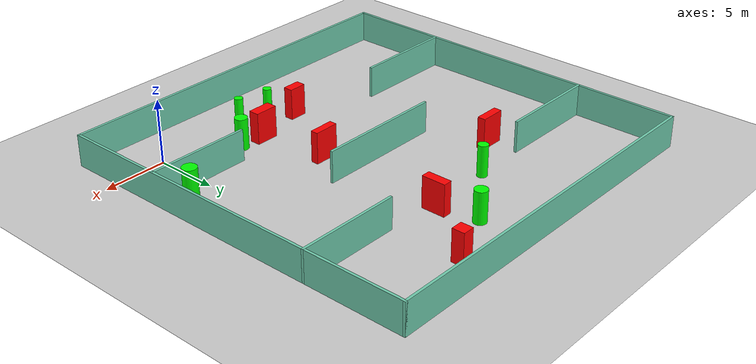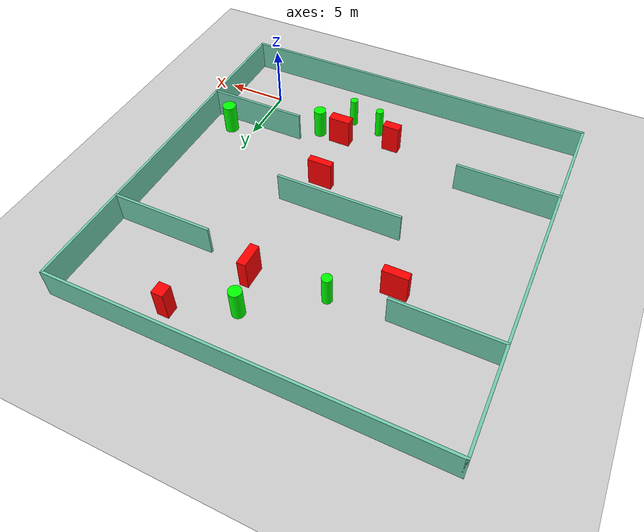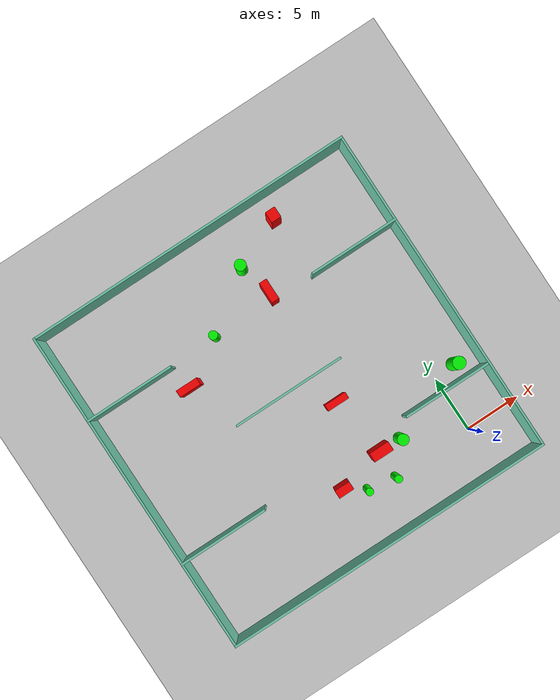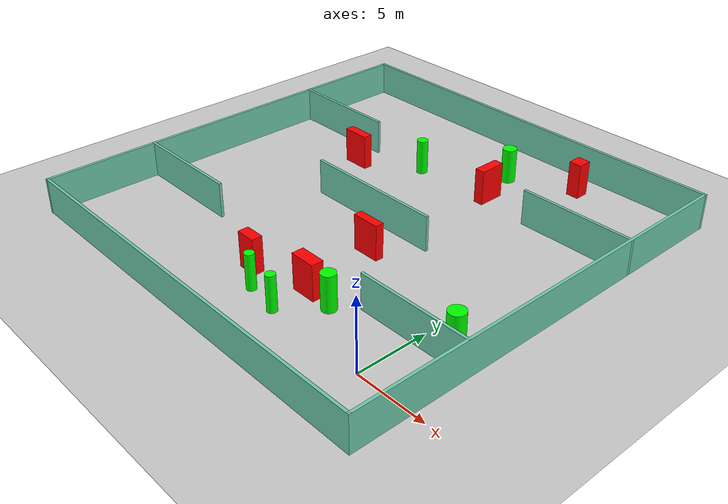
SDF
<sdf version="1.7">
 <world name="default">
  <light name="sun" type="directional">
   <pose>0 0 10 0 -0 0</pose>
   <diffuse>0.8 0.8 0.8 1</diffuse>
   <specular>0.2 0.2 0.2 1</specular>
   <attenuation>
    <range>1000</range>
    <constant>0.9</constant>
    <linear>0.01</linear>
    <quadratic>0.001</quadratic>
   </attenuation>
   <direction>-0.5 0.1 -0.9</direction>
   <spot><inner_angle>0</inner_angle><outer_angle>0</outer_angle><falloff>0</falloff></spot>
  </light>
  <model name="ground_plane">
   <static>1</static>
   <link name="link">
    <collision name="collision">
     <geometry><plane><normal>0 0 1</normal><size>100 100</size></plane></geometry>
     <surface>
      <contact><collide_bitmask>65535</collide_bitmask></contact>
      <friction><ode><mu>100</mu><mu2>50</mu2></ode></friction>
     </surface>
    </collision>
    <visual name="visual">
     <cast_shadows>0</cast_shadows>
     <geometry><plane><normal>0 0 1</normal><size>100 100</size></plane></geometry>
     <material>
      <script><uri>file://media/materials/scripts/gazebo.material</uri><name>Gazebo/Grey</name></script>
     </material>
    </visual>
   </link>
  </model>
  <gravity>0 0 -9.8</gravity>
  <magnetic_field>6e-06 2.3e-05 -4.2e-05</magnetic_field>
  <atmosphere type="adiabatic"/>
  <physics type="ode">
   <max_step_size>0.001</max_step_size>
   <real_time_factor>1</real_time_factor>
   <real_time_update_rate>1000</real_time_update_rate>
  </physics>
  <scene><ambient>0.4 0.4 0.4 1</ambient><background>0.7 0.7 0.7 1</background><shadows>1</shadows></scene>
  <spherical_coordinates>
   <surface_model>EARTH_WGS84</surface_model>
   <latitude_deg>0</latitude_deg>
   <longitude_deg>0</longitude_deg>
   <elevation>0</elevation>
   <heading_deg>0</heading_deg>
  </spherical_coordinates>
  <model name="my_base_walls">
   <link name="Wall_10">
    <collision name="Wall_10_Collision">
     <geometry><box><size>8.2 0.2 2.5</size></box></geometry>
     <pose>0 0 1.25 0 -0 0</pose>
    </collision>
    <visual name="Wall_10_Visual">
     <pose>0 0 1.25 0 -0 0</pose>
     <geometry><box><size>8.2 0.2 2.5</size></box></geometry>
     <material>
      <script><uri>file://media/materials/scripts/gazebo.material</uri><name>Gazebo/Grey</name></script>
      <ambient>0.435294 0.796078 0.67451 1</ambient>
     </material>
     <meta><layer>0</layer></meta>
    </visual>
    <pose>-11 -7 0 0 -0 0</pose>
   </link>
   <link name="Wall_12">
    <collision name="Wall_12_Collision">
     <geometry><box><size>8.2 0.2 2.5</size></box></geometry>
     <pose>0 0 1.25 0 -0 0</pose>
    </collision>
    <visual name="Wall_12_Visual">
     <pose>0 0 1.25 0 -0 0</pose>
     <geometry><box><size>8.2 0.2 2.5</size></box></geometry>
     <material>
      <script><uri>file://media/materials/scripts/gazebo.material</uri><name>Gazebo/Grey</name></script>
      <ambient>0.435294 0.796078 0.67451 1</ambient>
     </material>
     <meta><layer>0</layer></meta>
    </visual>
    <pose>-11 7 0 0 -0 0</pose>
   </link>
   <link name="Wall_14">
    <collision name="Wall_14_Collision">
     <geometry><box><size>8.2 0.2 2.5</size></box></geometry>
     <pose>0 0 1.25 0 -0 0</pose>
    </collision>
    <visual name="Wall_14_Visual">
     <pose>0 0 1.25 0 -0 0</pose>
     <geometry><box><size>8.2 0.2 2.5</size></box></geometry>
     <material>
      <script><uri>file://media/materials/scripts/gazebo.material</uri><name>Gazebo/Grey</name></script>
      <ambient>0.435294 0.796078 0.67451 1</ambient>
     </material>
     <meta><layer>0</layer></meta>
    </visual>
    <pose>11 7 0 0 -0 3.14159</pose>
   </link>
   <link name="Wall_16">
    <collision name="Wall_16_Collision">
     <geometry><box><size>10.2 0.2 2.5</size></box></geometry>
     <pose>0 0 1.25 0 -0 0</pose>
    </collision>
    <visual name="Wall_16_Visual">
     <pose>0 0 1.25 0 -0 0</pose>
     <geometry><box><size>10.2 0.2 2.5</size></box></geometry>
     <material>
      <script><uri>file://media/materials/scripts/gazebo.material</uri><name>Gazebo/Grey</name></script>
      <ambient>0.435294 0.796078 0.67451 1</ambient>
     </material>
     <meta><layer>0</layer></meta>
    </visual>
    <pose>0 0 0 0 -0 3.14159</pose>
   </link>
   <link name="Wall_2">
    <collision name="Wall_2_Collision">
     <geometry><box><size>30.2 0.2 2.5</size></box></geometry>
     <pose>0 0 1.25 0 -0 0</pose>
    </collision>
    <visual name="Wall_2_Visual">
     <pose>0 0 1.25 0 -0 0</pose>
     <geometry><box><size>30.2 0.2 2.5</size></box></geometry>
     <material>
      <script><uri>file://media/materials/scripts/gazebo.material</uri><name>Gazebo/Grey</name></script>
      <ambient>0.435294 0.796078 0.67451 1</ambient>
     </material>
     <meta><layer>0</layer></meta>
    </visual>
    <pose>0 -15 0 0 -0 3.14159</pose>
   </link>
   <link name="Wall_3">
    <collision name="Wall_3_Collision">
     <geometry><box><size>30.2 0.2 2.5</size></box></geometry>
     <pose>0 0 1.25 0 -0 0</pose>
    </collision>
    <visual name="Wall_3_Visual">
     <pose>0 0 1.25 0 -0 0</pose>
     <geometry><box><size>30.2 0.2 2.5</size></box></geometry>
     <material>
      <script><uri>file://media/materials/scripts/gazebo.material</uri><name>Gazebo/Grey</name></script>
      <ambient>0.435294 0.796078 0.67451 1</ambient>
     </material>
     <meta><layer>0</layer></meta>
    </visual>
    <pose>-15 0 0 0 -0 1.5708</pose>
   </link>
   <link name="Wall_4">
    <collision name="Wall_4_Collision">
     <geometry><box><size>30.2 0.2 2.5</size></box></geometry>
     <pose>0 0 1.25 0 -0 0</pose>
    </collision>
    <visual name="Wall_4_Visual">
     <pose>0 0 1.25 0 -0 0</pose>
     <geometry><box><size>30.2 0.2 2.5</size></box></geometry>
     <material>
      <script><uri>file://media/materials/scripts/gazebo.material</uri><name>Gazebo/Grey</name></script>
      <ambient>0.435294 0.796078 0.67451 1</ambient>
     </material>
     <meta><layer>0</layer></meta>
    </visual>
    <pose>0 15 0 0 -0 0</pose>
   </link>
   <link name="Wall_6">
    <collision name="Wall_6_Collision">
     <geometry><box><size>30.2 0.2 2.5</size></box></geometry>
     <pose>0 0 1.25 0 -0 0</pose>
    </collision>
    <visual name="Wall_6_Visual">
     <pose>0 0 1.25 0 -0 0</pose>
     <geometry><box><size>30.2 0.2 2.5</size></box></geometry>
     <material>
      <script><uri>file://media/materials/scripts/gazebo.material</uri><name>Gazebo/Grey</name></script>
      <ambient>0.435294 0.796078 0.67451 1</ambient>
     </material>
     <meta><layer>0</layer></meta>
    </visual>
    <pose>15 0 0 0 -0 1.5708</pose>
   </link>
   <link name="Wall_8">
    <collision name="Wall_8_Collision">
     <geometry><box><size>8.2 0.2 2.5</size></box></geometry>
     <pose>0 0 1.25 0 -0 0</pose>
    </collision>
    <visual name="Wall_8_Visual">
     <pose>0 0 1.25 0 -0 0</pose>
     <geometry><box><size>8.2 0.2 2.5</size></box></geometry>
     <material>
      <script><uri>file://media/materials/scripts/gazebo.material</uri><name>Gazebo/Grey</name></script>
      <ambient>0.435294 0.796078 0.67451 1</ambient>
     </material>
     <meta><layer>0</layer></meta>
    </visual>
    <pose>11 -7 0 0 -0 3.14159</pose>
   </link>
   <static>1</static>
   <pose>-11 11 0 0 -0 0</pose>
  </model>
  <model name="cylinder1">
   <static>1</static>
   <link name="link">
    <inertial>
     <mass>1</mass>
     <inertia><ixx>0.5</ixx><ixy>0</ixy><ixz>0</ixz><iyy>0.5</iyy><iyz>0</iyz><izz>1</izz></inertia>
    </inertial>
    <collision name="collision">
     <geometry><cylinder><radius>0.5697415680932616</radius><length>2.5</length></cylinder></geometry>
    </collision>
    <visual name="visual">
     <geometry><cylinder><radius>0.5697415680932616</radius><length>2.5</length></cylinder></geometry>
     <material>
      <ambient>0 1 0 1</ambient>
      <diffuse>0 1 0 1</diffuse>
      <specular>0.1 0.1 0.1 1</specular>
      <emissive>0 0 0 0</emissive>
     </material>
    </visual>
   </link>
   <pose>1.9342070756735232 5.329583591210259 1.25 0 0 0</pose>
  </model>
  <model name="cylinder2">
   <static>1</static>
   <link name="link">
    <inertial>
     <mass>1</mass>
     <inertia><ixx>0.5</ixx><ixy>0</ixy><ixz>0</ixz><iyy>0.5</iyy><iyz>0</iyz><izz>1</izz></inertia>
    </inertial>
    <collision name="collision">
     <geometry><cylinder><radius>0.333401308221852</radius><length>2.5</length></cylinder></geometry>
    </collision>
    <visual name="visual">
     <geometry><cylinder><radius>0.333401308221852</radius><length>2.5</length></cylinder></geometry>
     <material>
      <ambient>0 1 0 1</ambient>
      <diffuse>0 1 0 1</diffuse>
      <specular>0.1 0.1 0.1 1</specular>
      <emissive>0 0 0 0</emissive>
     </material>
    </visual>
   </link>
   <pose>-7.394859848092429 0.11835072772446642 1.25 0 0 0</pose>
  </model>
  <model name="cylinder3">
   <static>1</static>
   <link name="link">
    <inertial>
     <mass>1</mass>
     <inertia><ixx>0.5</ixx><ixy>0</ixy><ixz>0</ixz><iyy>0.5</iyy><iyz>0</iyz><izz>1</izz></inertia>
    </inertial>
    <collision name="collision">
     <geometry><cylinder><radius>0.49663461713797274</radius><length>2.5</length></cylinder></geometry>
    </collision>
    <visual name="visual">
     <geometry><cylinder><radius>0.49663461713797274</radius><length>2.5</length></cylinder></geometry>
     <material>
      <ambient>0 1 0 1</ambient>
      <diffuse>0 1 0 1</diffuse>
      <specular>0.1 0.1 0.1 1</specular>
      <emissive>0 0 0 0</emissive>
     </material>
    </visual>
   </link>
   <pose>-5.330746722777626 2.596535190566134 1.25 0 0 0</pose>
  </model>
  <model name="cylinder4">
   <static>1</static>
   <link name="link">
    <inertial>
     <mass>1</mass>
     <inertia><ixx>0.5</ixx><ixy>0</ixy><ixz>0</ixz><iyy>0.5</iyy><iyz>0</iyz><izz>1</izz></inertia>
    </inertial>
    <collision name="collision">
     <geometry><cylinder><radius>0.5023186681708851</radius><length>2.5</length></cylinder></geometry>
    </collision>
    <visual name="visual">
     <geometry><cylinder><radius>0.5023186681708851</radius><length>2.5</length></cylinder></geometry>
     <material>
      <ambient>0 1 0 1</ambient>
      <diffuse>0 1 0 1</diffuse>
      <specular>0.1 0.1 0.1 1</specular>
      <emissive>0 0 0 0</emissive>
     </material>
    </visual>
   </link>
   <pose>-8.619462832568628 21.815094527442547 1.25 0 0 0</pose>
  </model>
  <model name="cylinder5">
   <static>1</static>
   <link name="link">
    <inertial>
     <mass>1</mass>
     <inertia><ixx>0.5</ixx><ixy>0</ixy><ixz>0</ixz><iyy>0.5</iyy><iyz>0</iyz><izz>1</izz></inertia>
    </inertial>
    <collision name="collision">
     <geometry><cylinder><radius>0.3941512006673357</radius><length>2.5</length></cylinder></geometry>
    </collision>
    <visual name="visual">
     <geometry><cylinder><radius>0.3941512006673357</radius><length>2.5</length></cylinder></geometry>
     <material>
      <ambient>0 1 0 1</ambient>
      <diffuse>0 1 0 1</diffuse>
      <specular>0.1 0.1 0.1 1</specular>
      <emissive>0 0 0 0</emissive>
     </material>
    </visual>
   </link>
   <pose>-13.611540777574035 18.243194888988604 1.25 0 0 0</pose>
  </model>
  <model name="cylinder6">
   <static>1</static>
   <link name="link">
    <inertial>
     <mass>1</mass>
     <inertia><ixx>0.5</ixx><ixy>0</ixy><ixz>0</ixz><iyy>0.5</iyy><iyz>0</iyz><izz>1</izz></inertia>
    </inertial>
    <collision name="collision">
     <geometry><cylinder><radius>0.32965306105464814</radius><length>2.5</length></cylinder></geometry>
    </collision>
    <visual name="visual">
     <geometry><cylinder><radius>0.32965306105464814</radius><length>2.5</length></cylinder></geometry>
     <material>
      <ambient>0 1 0 1</ambient>
      <diffuse>0 1 0 1</diffuse>
      <specular>0.1 0.1 0.1 1</specular>
      <emissive>0 0 0 0</emissive>
     </material>
    </visual>
   </link>
   <pose>-9.946219867723046 0.5346379207785241 1.25 0 0 0</pose>
  </model>
  <model name="box1">
   <static>1</static>
   <link name="link">
    <inertial>
     <mass>1</mass>
     <inertia><ixx>0.083</ixx><ixy>0</ixy><ixz>0</ixz><iyy>0.083</iyy><iyz>0</iyz><izz>0.083</izz></inertia>
    </inertial>
    <collision name="collision">
     <geometry><box><size>0.9195393727685914 0.9787734424285436 2.5</size></box></geometry>
    </collision>
    <visual name="visual">
     <geometry><box><size>0.9195393727685914 0.9787734424285436 2.5</size></box></geometry>
     <material>
      <ambient>1 0 0 1</ambient>
      <diffuse>1 0 0 1</diffuse>
      <specular>0.1 0.1 0.1 1</specular>
      <emissive>0 0 0 0</emissive>
     </material>
    </visual>
    <sensor name="my_contact" type="contact">
     <contact><collision>box_collision</collision><topic>__default_topic__</topic></contact>
    </sensor>
   </link>
   <pose>-4.122501243535202 23.770580675337513 1.25 0 0 0</pose>
  </model>
  <model name="box2">
   <static>1</static>
   <link name="link">
    <inertial>
     <mass>1</mass>
     <inertia><ixx>0.083</ixx><ixy>0</ixy><ixz>0</ixz><iyy>0.083</iyy><iyz>0</iyz><izz>0.083</izz></inertia>
    </inertial>
    <collision name="collision">
     <geometry><box><size>1.4010800479337786 0.7394016680378944 2.5</size></box></geometry>
    </collision>
    <visual name="visual">
     <geometry><box><size>1.4010800479337786 0.7394016680378944 2.5</size></box></geometry>
     <material>
      <ambient>1 0 0 1</ambient>
      <diffuse>1 0 0 1</diffuse>
      <specular>0.1 0.1 0.1 1</specular>
      <emissive>0 0 0 0</emissive>
     </material>
    </visual>
    <sensor name="my_contact" type="contact">
     <contact><collision>box_collision</collision><topic>__default_topic__</topic></contact>
    </sensor>
   </link>
   <pose>-11.603206290846817 1.8008180334190378 1.25 0 0 0</pose>
  </model>
  <model name="box3">
   <static>1</static>
   <link name="link">
    <inertial>
     <mass>1</mass>
     <inertia><ixx>0.083</ixx><ixy>0</ixy><ixz>0</ixz><iyy>0.083</iyy><iyz>0</iyz><izz>0.083</izz></inertia>
    </inertial>
    <collision name="collision">
     <geometry><box><size>1.979544338009502 0.6362539178990458 2.5</size></box></geometry>
    </collision>
    <visual name="visual">
     <geometry><box><size>1.979544338009502 0.6362539178990458 2.5</size></box></geometry>
     <material>
      <ambient>1 0 0 1</ambient>
      <diffuse>1 0 0 1</diffuse>
      <specular>0.1 0.1 0.1 1</specular>
      <emissive>0 0 0 0</emissive>
     </material>
    </visual>
    <sensor name="my_contact" type="contact">
     <contact><collision>box_collision</collision><topic>__default_topic__</topic></contact>
    </sensor>
   </link>
   <pose>-17.651650235539456 15.78825926498919 1.25 0 0 0</pose>
  </model>
  <model name="box4">
   <static>1</static>
   <link name="link">
    <inertial>
     <mass>1</mass>
     <inertia><ixx>0.083</ixx><ixy>0</ixy><ixz>0</ixz><iyy>0.083</iyy><iyz>0</iyz><izz>0.083</izz></inertia>
    </inertial>
    <collision name="collision">
     <geometry><box><size>0.7058183626133925 1.9089108080538795 2.5</size></box></geometry>
    </collision>
    <visual name="visual">
     <geometry><box><size>0.7058183626133925 1.9089108080538795 2.5</size></box></geometry>
     <material>
      <ambient>1 0 0 1</ambient>
      <diffuse>1 0 0 1</diffuse>
      <specular>0.1 0.1 0.1 1</specular>
      <emissive>0 0 0 0</emissive>
     </material>
    </visual>
    <sensor name="my_contact" type="contact">
     <contact><collision>box_collision</collision><topic>__default_topic__</topic></contact>
    </sensor>
   </link>
   <pose>-7.806874825905826 18.7584544978171 1.25 0 0 0</pose>
  </model>
  <model name="box5">
   <static>1</static>
   <link name="link">
    <inertial>
     <mass>1</mass>
     <inertia><ixx>0.083</ixx><ixy>0</ixy><ixz>0</ixz><iyy>0.083</iyy><iyz>0</iyz><izz>0.083</izz></inertia>
    </inertial>
    <collision name="collision">
     <geometry><box><size>1.82624098672206 0.8338423743822383 2.5</size></box></geometry>
    </collision>
    <visual name="visual">
     <geometry><box><size>1.82624098672206 0.8338423743822383 2.5</size></box></geometry>
     <material>
      <ambient>1 0 0 1</ambient>
      <diffuse>1 0 0 1</diffuse>
      <specular>0.1 0.1 0.1 1</specular>
      <emissive>0 0 0 0</emissive>
     </material>
    </visual>
    <sensor name="my_contact" type="contact">
     <contact><collision>box_collision</collision><topic>__default_topic__</topic></contact>
    </sensor>
   </link>
   <pose>-7.353206956645476 2.7420084281837953 1.25 0 0 0</pose>
  </model>
  <model name="box6">
   <static>1</static>
   <link name="link">
    <inertial>
     <mass>1</mass>
     <inertia><ixx>0.083</ixx><ixy>0</ixy><ixz>0</ixz><iyy>0.083</iyy><iyz>0</iyz><izz>0.083</izz></inertia>
    </inertial>
    <collision name="collision">
     <geometry><box><size>1.9857446307243327 0.5865780221239458 2.5</size></box></geometry>
    </collision>
    <visual name="visual">
     <geometry><box><size>1.9857446307243327 0.5865780221239458 2.5</size></box></geometry>
     <material>
      <ambient>1 0 0 1</ambient>
      <diffuse>1 0 0 1</diffuse>
      <specular>0.1 0.1 0.1 1</specular>
      <emissive>0 0 0 0</emissive>
     </material>
    </visual>
    <sensor name="my_contact" type="contact">
     <contact><collision>box_collision</collision><topic>__default_topic__</topic></contact>
    </sensor>
   </link>
   <pose>-8.149971343079166 8.164909085840804 1.25 0 0 0</pose>
  </model>
 </world>
</sdf>
